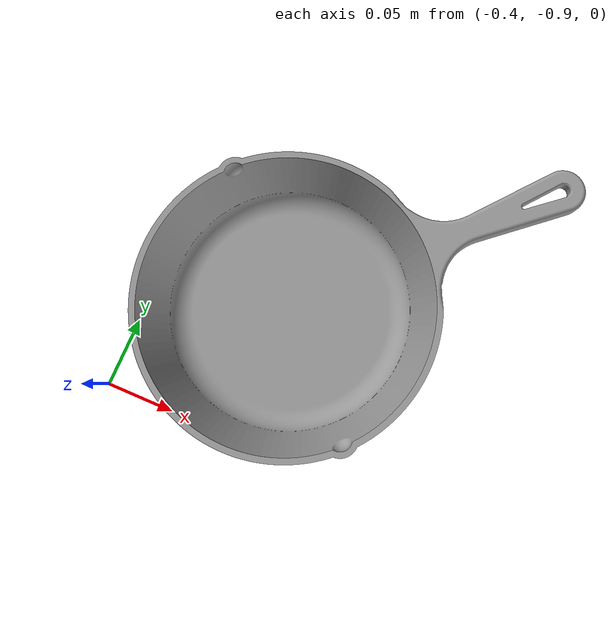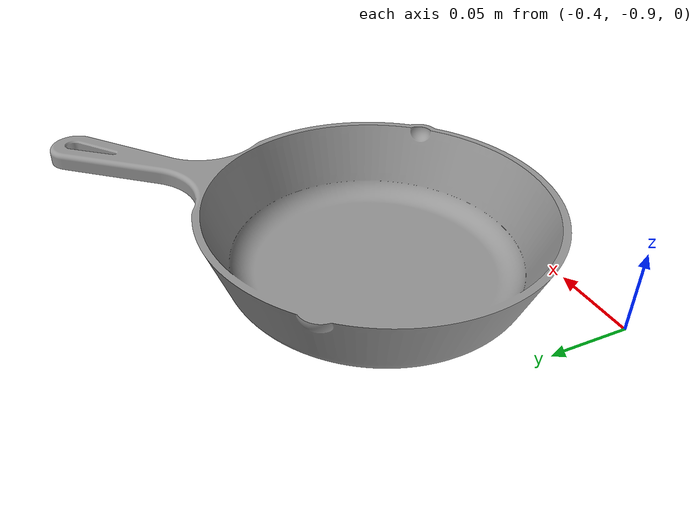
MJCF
<mujoco model="mesh_model">
        <asset>
            <mesh name="frying_pan" file="frying_pan.obj" scale="0.001 0.001 0.001"/>
        </asset>
        <worldbody>
            <body>
                <geom type="mesh" mesh="frying_pan" contype="0" conaffinity="0" rgba=".6 .6 .6 1" euler="90 -45 0" pos="-0.3 -0.8 0.02"/>
            </body>
        </worldbody>
    </mujoco>
